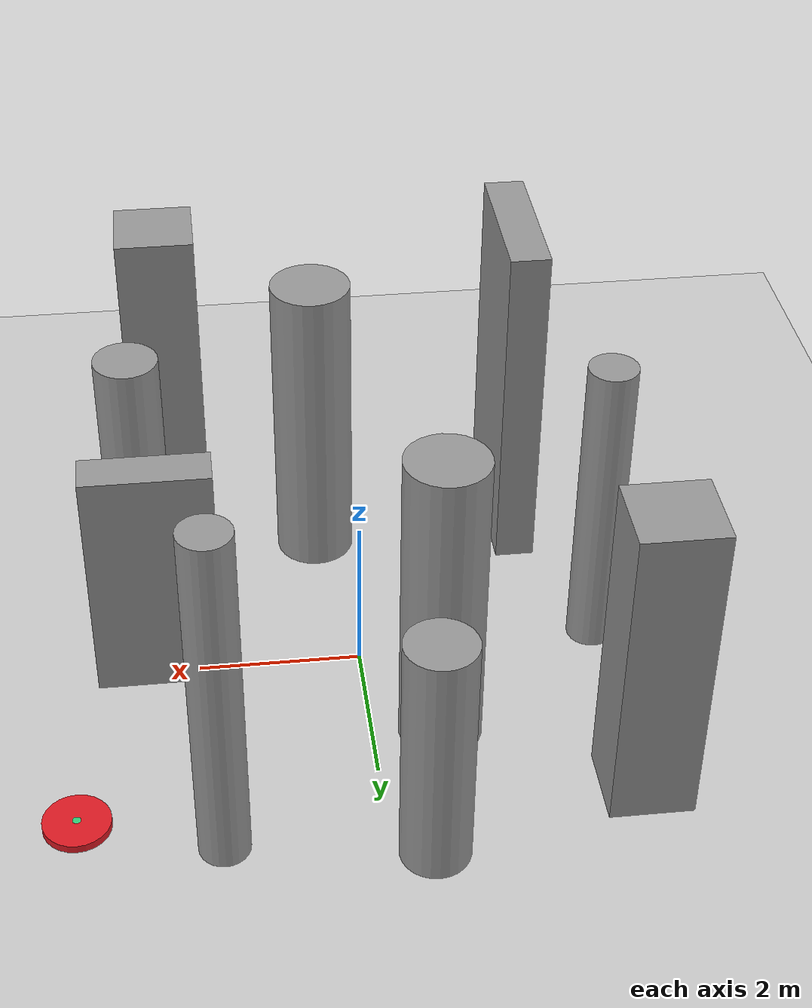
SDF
<sdf version="1.7">
 <world name="default">
  <model name="ground_plane">
   <static>1</static>
   <link name="link">
    <collision name="collision">
     <geometry><plane><normal>0 0 1</normal><size>100 100</size></plane></geometry>
     <surface><friction><ode><mu>100</mu><mu2>50</mu2></ode></friction></surface>
    </collision>
    <visual name="visual">
     <cast_shadows>0</cast_shadows>
     <geometry><plane><normal>0 0 1</normal><size>100 100</size></plane></geometry>
     <material>
      <script><uri>file://media/materials/scripts/gazebo.material</uri><name>Gazebo/Grey</name></script>
     </material>
    </visual>
   </link>
  </model>
  <model name="obstalces2">
   <link name="link_11">
    <inertial>
     <mass>1</mass>
     <inertia><ixx>166667</ixx><ixy>0</ixy><ixz>0</ixz><iyy>166667</iyy><iyz>0</iyz><izz>166667</izz></inertia>
    </inertial>
    <pose>-3.03778 2.53975 0 0 -0 0</pose>
    <visual name="visual">
     <geometry><box><size>1 1 4</size></box></geometry>
     <material>
      <lighting>1</lighting>
      <script><uri>file://media/materials/scripts/gazebo.material</uri><name>Gazebo/Grey</name></script>
      <shader type="pixel"><normal_map>__default__</normal_map></shader>
      <ambient>0.3 0.3 0.3 1</ambient>
      <diffuse>0.7 0.7 0.7 1</diffuse>
      <specular>0.01 0.01 0.01 1</specular>
      <emissive>0 0 0 1</emissive>
     </material>
    </visual>
    <collision name="collision">
     <geometry><box><size>1 1 4</size></box></geometry>
     <surface>
      <friction>
       <ode><mu>1</mu><mu2>1</mu2><fdir1>0 0 0</fdir1><slip1>0</slip1><slip2>0</slip2></ode>
       <torsional>
        <coefficient>1</coefficient>
        <patch_radius>0</patch_radius>
        <surface_radius>0</surface_radius>
        <use_patch_radius>1</use_patch_radius>
        <ode><slip>0</slip></ode>
       </torsional>
      </friction>
      <bounce><restitution_coefficient>0</restitution_coefficient><threshold>1e+06</threshold></bounce>
      <contact>
       <collide_without_contact>0</collide_without_contact>
       <collide_without_contact_bitmask>1</collide_without_contact_bitmask>
       <collide_bitmask>1</collide_bitmask>
       <ode>
        <soft_cfm>0</soft_cfm>
        <soft_erp>0.2</soft_erp>
        <kp>1e+13</kp>
        <kd>1</kd>
        <max_vel>0.01</max_vel>
        <min_depth>0</min_depth>
       </ode>
       <bullet>
        <split_impulse>1</split_impulse>
        <split_impulse_penetration_threshold>-0.01</split_impulse_penetration_threshold>
        <soft_cfm>0</soft_cfm>
        <soft_erp>0.2</soft_erp>
        <kp>1e+13</kp>
        <kd>1</kd>
       </bullet>
      </contact>
     </surface>
    </collision>
   </link>
   <link name="link_12">
    <inertial>
     <mass>1</mass>
     <inertia><ixx>145833</ixx><ixy>0</ixy><ixz>0</ixz><iyy>145833</iyy><iyz>0</iyz><izz>125</izz></inertia>
    </inertial>
    <pose>2.64639 -1.73365 0 0 -0 0</pose>
    <visual name="visual">
     <geometry><cylinder><radius>0.4</radius><length>3</length></cylinder></geometry>
     <material>
      <lighting>1</lighting>
      <script><uri>file://media/materials/scripts/gazebo.material</uri><name>Gazebo/Grey</name></script>
      <shader type="pixel"><normal_map>__default__</normal_map></shader>
      <ambient>0.3 0.3 0.3 1</ambient>
      <diffuse>0.7 0.7 0.7 1</diffuse>
      <specular>0.01 0.01 0.01 1</specular>
      <emissive>0 0 0 1</emissive>
     </material>
    </visual>
    <collision name="collision">
     <geometry><cylinder><radius>0.4</radius><length>3</length></cylinder></geometry>
     <surface>
      <friction>
       <ode><mu>1</mu><mu2>1</mu2><fdir1>0 0 0</fdir1><slip1>0</slip1><slip2>0</slip2></ode>
       <torsional>
        <coefficient>1</coefficient>
        <patch_radius>0</patch_radius>
        <surface_radius>0</surface_radius>
        <use_patch_radius>1</use_patch_radius>
        <ode><slip>0</slip></ode>
       </torsional>
      </friction>
      <bounce><restitution_coefficient>0</restitution_coefficient><threshold>1e+06</threshold></bounce>
      <contact>
       <collide_without_contact>0</collide_without_contact>
       <collide_without_contact_bitmask>1</collide_without_contact_bitmask>
       <collide_bitmask>1</collide_bitmask>
       <ode>
        <soft_cfm>0</soft_cfm>
        <soft_erp>0.2</soft_erp>
        <kp>1e+13</kp>
        <kd>1</kd>
        <max_vel>0.01</max_vel>
        <min_depth>0</min_depth>
       </ode>
       <bullet>
        <split_impulse>1</split_impulse>
        <split_impulse_penetration_threshold>-0.01</split_impulse_penetration_threshold>
        <soft_cfm>0</soft_cfm>
        <soft_erp>0.2</soft_erp>
        <kp>1e+13</kp>
        <kd>1</kd>
       </bullet>
      </contact>
     </surface>
    </collision>
   </link>
   <link name="link_14">
    <inertial>
     <mass>1</mass>
     <inertia><ixx>145833</ixx><ixy>0</ixy><ixz>0</ixz><iyy>145833</iyy><iyz>0</iyz><izz>125</izz></inertia>
    </inertial>
    <pose>0.344724 -2.40039 0 0 -0 0</pose>
    <visual name="visual">
     <geometry><cylinder><radius>0.5</radius><length>4</length></cylinder></geometry>
     <material>
      <lighting>1</lighting>
      <script><uri>file://media/materials/scripts/gazebo.material</uri><name>Gazebo/Grey</name></script>
      <shader type="pixel"><normal_map>__default__</normal_map></shader>
      <ambient>0.3 0.3 0.3 1</ambient>
      <diffuse>0.7 0.7 0.7 1</diffuse>
      <specular>0.01 0.01 0.01 1</specular>
      <emissive>0 0 0 1</emissive>
     </material>
    </visual>
    <collision name="collision">
     <geometry><cylinder><radius>0.5</radius><length>4</length></cylinder></geometry>
     <surface>
      <friction>
       <ode><mu>1</mu><mu2>1</mu2><fdir1>0 0 0</fdir1><slip1>0</slip1><slip2>0</slip2></ode>
       <torsional>
        <coefficient>1</coefficient>
        <patch_radius>0</patch_radius>
        <surface_radius>0</surface_radius>
        <use_patch_radius>1</use_patch_radius>
        <ode><slip>0</slip></ode>
       </torsional>
      </friction>
      <bounce><restitution_coefficient>0</restitution_coefficient><threshold>1e+06</threshold></bounce>
      <contact>
       <collide_without_contact>0</collide_without_contact>
       <collide_without_contact_bitmask>1</collide_without_contact_bitmask>
       <collide_bitmask>1</collide_bitmask>
       <ode>
        <soft_cfm>0</soft_cfm>
        <soft_erp>0.2</soft_erp>
        <kp>1e+13</kp>
        <kd>1</kd>
        <max_vel>0.01</max_vel>
        <min_depth>0</min_depth>
       </ode>
       <bullet>
        <split_impulse>1</split_impulse>
        <split_impulse_penetration_threshold>-0.01</split_impulse_penetration_threshold>
        <soft_cfm>0</soft_cfm>
        <soft_erp>0.2</soft_erp>
        <kp>1e+13</kp>
        <kd>1</kd>
       </bullet>
      </contact>
     </surface>
    </collision>
   </link>
   <link name="link_16">
    <inertial>
     <mass>1</mass>
     <inertia><ixx>145833</ixx><ixy>0</ixy><ixz>0</ixz><iyy>145833</iyy><iyz>0</iyz><izz>125</izz></inertia>
    </inertial>
    <pose>-0.815528 1.39211 0 0 -0 0</pose>
    <visual name="visual">
     <geometry><cylinder><radius>0.5</radius><length>4</length></cylinder></geometry>
     <material>
      <lighting>1</lighting>
      <script><uri>file://media/materials/scripts/gazebo.material</uri><name>Gazebo/Grey</name></script>
      <shader type="pixel"><normal_map>__default__</normal_map></shader>
      <ambient>0.3 0.3 0.3 1</ambient>
      <diffuse>0.7 0.7 0.7 1</diffuse>
      <specular>0.01 0.01 0.01 1</specular>
      <emissive>0 0 0 1</emissive>
     </material>
    </visual>
    <collision name="collision">
     <geometry><cylinder><radius>0.5</radius><length>4</length></cylinder></geometry>
     <surface>
      <friction>
       <ode><mu>1</mu><mu2>1</mu2><fdir1>0 0 0</fdir1><slip1>0</slip1><slip2>0</slip2></ode>
       <torsional>
        <coefficient>1</coefficient>
        <patch_radius>0</patch_radius>
        <surface_radius>0</surface_radius>
        <use_patch_radius>1</use_patch_radius>
        <ode><slip>0</slip></ode>
       </torsional>
      </friction>
      <bounce><restitution_coefficient>0</restitution_coefficient><threshold>1e+06</threshold></bounce>
      <contact>
       <collide_without_contact>0</collide_without_contact>
       <collide_without_contact_bitmask>1</collide_without_contact_bitmask>
       <collide_bitmask>1</collide_bitmask>
       <ode>
        <soft_cfm>0</soft_cfm>
        <soft_erp>0.2</soft_erp>
        <kp>1e+13</kp>
        <kd>1</kd>
        <max_vel>0.01</max_vel>
        <min_depth>0</min_depth>
       </ode>
       <bullet>
        <split_impulse>1</split_impulse>
        <split_impulse_penetration_threshold>-0.01</split_impulse_penetration_threshold>
        <soft_cfm>0</soft_cfm>
        <soft_erp>0.2</soft_erp>
        <kp>1e+13</kp>
        <kd>1</kd>
       </bullet>
      </contact>
     </surface>
    </collision>
   </link>
   <link name="link_17">
    <inertial>
     <mass>1</mass>
     <inertia><ixx>145833</ixx><ixy>0</ixy><ixz>0</ixz><iyy>145833</iyy><iyz>0</iyz><izz>125</izz></inertia>
    </inertial>
    <pose>-0.417772 3.76581 0 0 -0 0</pose>
    <visual name="visual">
     <geometry><cylinder><radius>0.4</radius><length>3</length></cylinder></geometry>
     <material>
      <lighting>1</lighting>
      <script><uri>file://media/materials/scripts/gazebo.material</uri><name>Gazebo/Grey</name></script>
      <shader type="pixel"><normal_map>__default__</normal_map></shader>
      <ambient>0.3 0.3 0.3 1</ambient>
      <diffuse>0.7 0.7 0.7 1</diffuse>
      <specular>0.01 0.01 0.01 1</specular>
      <emissive>0 0 0 1</emissive>
     </material>
    </visual>
    <collision name="collision">
     <geometry><cylinder><radius>0.4</radius><length>3</length></cylinder></geometry>
     <surface>
      <friction>
       <ode><mu>1</mu><mu2>1</mu2><fdir1>0 0 0</fdir1><slip1>0</slip1><slip2>0</slip2></ode>
       <torsional>
        <coefficient>1</coefficient>
        <patch_radius>0</patch_radius>
        <surface_radius>0</surface_radius>
        <use_patch_radius>1</use_patch_radius>
        <ode><slip>0</slip></ode>
       </torsional>
      </friction>
      <bounce><restitution_coefficient>0</restitution_coefficient><threshold>1e+06</threshold></bounce>
      <contact>
       <collide_without_contact>0</collide_without_contact>
       <collide_without_contact_bitmask>1</collide_without_contact_bitmask>
       <collide_bitmask>1</collide_bitmask>
       <ode>
        <soft_cfm>0</soft_cfm>
        <soft_erp>0.2</soft_erp>
        <kp>1e+13</kp>
        <kd>1</kd>
        <max_vel>0.01</max_vel>
        <min_depth>0</min_depth>
       </ode>
       <bullet>
        <split_impulse>1</split_impulse>
        <split_impulse_penetration_threshold>-0.01</split_impulse_penetration_threshold>
        <soft_cfm>0</soft_cfm>
        <soft_erp>0.2</soft_erp>
        <kp>1e+13</kp>
        <kd>1</kd>
       </bullet>
      </contact>
     </surface>
    </collision>
   </link>
   <link name="link_18">
    <inertial>
     <mass>1</mass>
     <inertia><ixx>166667</ixx><ixy>0</ixy><ixz>0</ixz><iyy>166667</iyy><iyz>0</iyz><izz>166667</izz></inertia>
    </inertial>
    <pose>2.22537 -4.04815 0 0 -0 0</pose>
    <visual name="visual">
     <geometry><box><size>1 1 4</size></box></geometry>
     <material>
      <lighting>1</lighting>
      <script><uri>file://media/materials/scripts/gazebo.material</uri><name>Gazebo/Grey</name></script>
      <shader type="pixel"><normal_map>__default__</normal_map></shader>
      <ambient>0.3 0.3 0.3 1</ambient>
      <diffuse>0.7 0.7 0.7 1</diffuse>
      <specular>0.01 0.01 0.01 1</specular>
      <emissive>0 0 0 1</emissive>
     </material>
    </visual>
    <collision name="collision">
     <geometry><box><size>1 1 4</size></box></geometry>
     <surface>
      <friction>
       <ode><mu>1</mu><mu2>1</mu2><fdir1>0 0 0</fdir1><slip1>0</slip1><slip2>0</slip2></ode>
       <torsional>
        <coefficient>1</coefficient>
        <patch_radius>0</patch_radius>
        <surface_radius>0</surface_radius>
        <use_patch_radius>1</use_patch_radius>
        <ode><slip>0</slip></ode>
       </torsional>
      </friction>
      <bounce><restitution_coefficient>0</restitution_coefficient><threshold>1e+06</threshold></bounce>
      <contact>
       <collide_without_contact>0</collide_without_contact>
       <collide_without_contact_bitmask>1</collide_without_contact_bitmask>
       <collide_bitmask>1</collide_bitmask>
       <ode>
        <soft_cfm>0</soft_cfm>
        <soft_erp>0.2</soft_erp>
        <kp>1e+13</kp>
        <kd>1</kd>
        <max_vel>0.01</max_vel>
        <min_depth>0</min_depth>
       </ode>
       <bullet>
        <split_impulse>1</split_impulse>
        <split_impulse_penetration_threshold>-0.01</split_impulse_penetration_threshold>
        <soft_cfm>0</soft_cfm>
        <soft_erp>0.2</soft_erp>
        <kp>1e+13</kp>
        <kd>1</kd>
       </bullet>
      </contact>
     </surface>
    </collision>
   </link>
   <link name="link_3">
    <inertial>
     <mass>1</mass>
     <inertia><ixx>145833</ixx><ixy>0</ixy><ixz>0</ixz><iyy>145833</iyy><iyz>0</iyz><izz>125</izz></inertia>
    </inertial>
    <pose>-2.97254 -0.183383 0 0 -0 0</pose>
    <visual name="visual">
     <geometry><cylinder><radius>0.3</radius><length>4</length></cylinder></geometry>
     <material>
      <lighting>1</lighting>
      <script><uri>file://media/materials/scripts/gazebo.material</uri><name>Gazebo/Grey</name></script>
      <shader type="pixel"><normal_map>__default__</normal_map></shader>
      <ambient>0.3 0.3 0.3 1</ambient>
      <diffuse>0.7 0.7 0.7 1</diffuse>
      <specular>0.01 0.01 0.01 1</specular>
      <emissive>0 0 0 1</emissive>
     </material>
    </visual>
    <collision name="collision">
     <geometry><cylinder><radius>0.3</radius><length>4</length></cylinder></geometry>
     <surface>
      <friction>
       <ode><mu>1</mu><mu2>1</mu2><fdir1>0 0 0</fdir1><slip1>0</slip1><slip2>0</slip2></ode>
       <torsional>
        <coefficient>1</coefficient>
        <patch_radius>0</patch_radius>
        <surface_radius>0</surface_radius>
        <use_patch_radius>1</use_patch_radius>
        <ode><slip>0</slip></ode>
       </torsional>
      </friction>
      <bounce><restitution_coefficient>0</restitution_coefficient><threshold>1e+06</threshold></bounce>
      <contact>
       <collide_without_contact>0</collide_without_contact>
       <collide_without_contact_bitmask>1</collide_without_contact_bitmask>
       <collide_bitmask>1</collide_bitmask>
       <ode>
        <soft_cfm>0</soft_cfm>
        <soft_erp>0.2</soft_erp>
        <kp>1e+13</kp>
        <kd>1</kd>
        <max_vel>0.01</max_vel>
        <min_depth>0</min_depth>
       </ode>
       <bullet>
        <split_impulse>1</split_impulse>
        <split_impulse_penetration_threshold>-0.01</split_impulse_penetration_threshold>
        <soft_cfm>0</soft_cfm>
        <soft_erp>0.2</soft_erp>
        <kp>1e+13</kp>
        <kd>1</kd>
       </bullet>
      </contact>
     </surface>
    </collision>
   </link>
   <link name="link_4">
    <inertial>
     <mass>1</mass>
     <inertia><ixx>166667</ixx><ixy>0</ixy><ixz>0</ixz><iyy>166667</iyy><iyz>0</iyz><izz>166667</izz></inertia>
    </inertial>
    <pose>2.46004 0.510193 0 0 -0 0</pose>
    <visual name="visual">
     <geometry><box><size>1.5 0.5 3</size></box></geometry>
     <material>
      <lighting>1</lighting>
      <script><uri>file://media/materials/scripts/gazebo.material</uri><name>Gazebo/Grey</name></script>
      <shader type="pixel"><normal_map>__default__</normal_map></shader>
      <ambient>0.3 0.3 0.3 1</ambient>
      <diffuse>0.7 0.7 0.7 1</diffuse>
      <specular>0.01 0.01 0.01 1</specular>
      <emissive>0 0 0 1</emissive>
     </material>
    </visual>
    <collision name="collision">
     <geometry><box><size>1.5 0.5 3</size></box></geometry>
     <surface>
      <friction>
       <ode><mu>1</mu><mu2>1</mu2><fdir1>0 0 0</fdir1><slip1>0</slip1><slip2>0</slip2></ode>
       <torsional>
        <coefficient>1</coefficient>
        <patch_radius>0</patch_radius>
        <surface_radius>0</surface_radius>
        <use_patch_radius>1</use_patch_radius>
        <ode><slip>0</slip></ode>
       </torsional>
      </friction>
      <bounce><restitution_coefficient>0</restitution_coefficient><threshold>1e+06</threshold></bounce>
      <contact>
       <collide_without_contact>0</collide_without_contact>
       <collide_without_contact_bitmask>1</collide_without_contact_bitmask>
       <collide_bitmask>1</collide_bitmask>
       <ode>
        <soft_cfm>0</soft_cfm>
        <soft_erp>0.2</soft_erp>
        <kp>1e+13</kp>
        <kd>1</kd>
        <max_vel>0.01</max_vel>
        <min_depth>0</min_depth>
       </ode>
       <bullet>
        <split_impulse>1</split_impulse>
        <split_impulse_penetration_threshold>-0.01</split_impulse_penetration_threshold>
        <soft_cfm>0</soft_cfm>
        <soft_erp>0.2</soft_erp>
        <kp>1e+13</kp>
        <kd>1</kd>
       </bullet>
      </contact>
     </surface>
    </collision>
   </link>
   <link name="link_5">
    <inertial>
     <mass>1</mass>
     <inertia><ixx>166667</ixx><ixy>0</ixy><ixz>0</ixz><iyy>166667</iyy><iyz>0</iyz><izz>166667</izz></inertia>
    </inertial>
    <pose>-2.2822 -2.82561 0 0 -0 0</pose>
    <visual name="visual">
     <geometry><box><size>0.5 2 5</size></box></geometry>
     <material>
      <lighting>1</lighting>
      <script><uri>file://media/materials/scripts/gazebo.material</uri><name>Gazebo/Grey</name></script>
      <shader type="pixel"><normal_map>__default__</normal_map></shader>
      <ambient>0.3 0.3 0.3 1</ambient>
      <diffuse>0.7 0.7 0.7 1</diffuse>
      <specular>0.01 0.01 0.01 1</specular>
      <emissive>0 0 0 1</emissive>
     </material>
    </visual>
    <collision name="collision">
     <geometry><box><size>0.5 2 5</size></box></geometry>
     <surface>
      <friction>
       <ode><mu>1</mu><mu2>1</mu2><fdir1>0 0 0</fdir1><slip1>0</slip1><slip2>0</slip2></ode>
       <torsional>
        <coefficient>1</coefficient>
        <patch_radius>0</patch_radius>
        <surface_radius>0</surface_radius>
        <use_patch_radius>1</use_patch_radius>
        <ode><slip>0</slip></ode>
       </torsional>
      </friction>
      <bounce><restitution_coefficient>0</restitution_coefficient><threshold>1e+06</threshold></bounce>
      <contact>
       <collide_without_contact>0</collide_without_contact>
       <collide_without_contact_bitmask>1</collide_without_contact_bitmask>
       <collide_bitmask>1</collide_bitmask>
       <ode>
        <soft_cfm>0</soft_cfm>
        <soft_erp>0.2</soft_erp>
        <kp>1e+13</kp>
        <kd>1</kd>
        <max_vel>0.01</max_vel>
        <min_depth>0</min_depth>
       </ode>
       <bullet>
        <split_impulse>1</split_impulse>
        <split_impulse_penetration_threshold>-0.01</split_impulse_penetration_threshold>
        <soft_cfm>0</soft_cfm>
        <soft_erp>0.2</soft_erp>
        <kp>1e+13</kp>
        <kd>1</kd>
       </bullet>
      </contact>
     </surface>
    </collision>
   </link>
   <link name="link_6">
    <inertial>
     <mass>1</mass>
     <inertia><ixx>145833</ixx><ixy>0</ixy><ixz>0</ixz><iyy>145833</iyy><iyz>0</iyz><izz>125</izz></inertia>
    </inertial>
    <pose>1.8493 2.9833 0 0 -0 0</pose>
    <visual name="visual">
     <geometry><cylinder><radius>0.3</radius><length>5</length></cylinder></geometry>
     <material>
      <lighting>1</lighting>
      <script><uri>file://media/materials/scripts/gazebo.material</uri><name>Gazebo/Grey</name></script>
      <shader type="pixel"><normal_map>__default__</normal_map></shader>
      <ambient>0.3 0.3 0.3 1</ambient>
      <diffuse>0.7 0.7 0.7 1</diffuse>
      <specular>0.01 0.01 0.01 1</specular>
      <emissive>0 0 0 1</emissive>
     </material>
    </visual>
    <collision name="collision">
     <geometry><cylinder><radius>0.3</radius><length>5</length></cylinder></geometry>
     <surface>
      <friction>
       <ode><mu>1</mu><mu2>1</mu2><fdir1>0 0 0</fdir1><slip1>0</slip1><slip2>0</slip2></ode>
       <torsional>
        <coefficient>1</coefficient>
        <patch_radius>0</patch_radius>
        <surface_radius>0</surface_radius>
        <use_patch_radius>1</use_patch_radius>
        <ode><slip>0</slip></ode>
       </torsional>
      </friction>
      <bounce><restitution_coefficient>0</restitution_coefficient><threshold>1e+06</threshold></bounce>
      <contact>
       <collide_without_contact>0</collide_without_contact>
       <collide_without_contact_bitmask>1</collide_without_contact_bitmask>
       <collide_bitmask>1</collide_bitmask>
       <ode>
        <soft_cfm>0</soft_cfm>
        <soft_erp>0.2</soft_erp>
        <kp>1e+13</kp>
        <kd>1</kd>
        <max_vel>0.01</max_vel>
        <min_depth>0</min_depth>
       </ode>
       <bullet>
        <split_impulse>1</split_impulse>
        <split_impulse_penetration_threshold>-0.01</split_impulse_penetration_threshold>
        <soft_cfm>0</soft_cfm>
        <soft_erp>0.2</soft_erp>
        <kp>1e+13</kp>
        <kd>1</kd>
       </bullet>
      </contact>
     </surface>
    </collision>
   </link>
   <static>0</static>
   <pose>8e-06 0 1.99999 1e-06 4e-06 0</pose>
  </model>
  <model name="conc">
   <link name="link_0">
    <inertial>
     <mass>1</mass>
     <inertia><ixx>0.145833</ixx><ixy>0</ixy><ixz>0</ixz><iyy>0.145833</iyy><iyz>0</iyz><izz>0.125</izz></inertia>
    </inertial>
    <visual name="visual">
     <geometry><cylinder><radius>0.4</radius><length>0.1</length></cylinder></geometry>
     <material>
      <lighting>1</lighting>
      <script><uri>file://media/materials/scripts/gazebo.material</uri><name>Gazebo/Grey</name></script>
      <shader type="pixel"><normal_map>__default__</normal_map></shader>
      <ambient>0.753 0.11 0.157 1</ambient>
      <diffuse>0.878 0.106 0.141 1</diffuse>
      <specular>0.01 0.01 0.01 1</specular>
      <emissive>0 0 0 1</emissive>
     </material>
    </visual>
    <collision name="collision">
     <geometry><cylinder><radius>0.4</radius><length>0.1</length></cylinder></geometry>
     <surface>
      <friction>
       <ode><mu>1</mu><mu2>1</mu2><fdir1>0 0 0</fdir1><slip1>0</slip1><slip2>0</slip2></ode>
       <torsional>
        <coefficient>1</coefficient>
        <patch_radius>0</patch_radius>
        <surface_radius>0</surface_radius>
        <use_patch_radius>1</use_patch_radius>
        <ode><slip>0</slip></ode>
       </torsional>
      </friction>
      <bounce><restitution_coefficient>0</restitution_coefficient><threshold>1e+06</threshold></bounce>
      <contact>
       <collide_without_contact>0</collide_without_contact>
       <collide_without_contact_bitmask>1</collide_without_contact_bitmask>
       <collide_bitmask>1</collide_bitmask>
       <ode>
        <soft_cfm>0</soft_cfm>
        <soft_erp>0.2</soft_erp>
        <kp>1e+13</kp>
        <kd>1</kd>
        <max_vel>0.01</max_vel>
        <min_depth>0</min_depth>
       </ode>
       <bullet>
        <split_impulse>1</split_impulse>
        <split_impulse_penetration_threshold>-0.01</split_impulse_penetration_threshold>
        <soft_cfm>0</soft_cfm>
        <soft_erp>0.2</soft_erp>
        <kp>1e+13</kp>
        <kd>1</kd>
       </bullet>
      </contact>
     </surface>
    </collision>
   </link>
   <link name="link_1">
    <inertial>
     <mass>1</mass>
     <inertia><ixx>0.145833</ixx><ixy>0</ixy><ixz>0</ixz><iyy>0.145833</iyy><iyz>0</iyz><izz>0.125</izz></inertia>
    </inertial>
    <pose>-0 0 0.05 0 -0 0</pose>
    <visual name="visual">
     <geometry><cylinder><radius>0.05</radius><length>0.001</length></cylinder></geometry>
     <material>
      <lighting>1</lighting>
      <script><uri>file://media/materials/scripts/gazebo.material</uri><name>Gazebo/Grey</name></script>
      <shader type="pixel"><normal_map>__default__</normal_map></shader>
      <ambient>0.149 0.635 0.412 1</ambient>
      <diffuse>0.2 0.82 0.478 1</diffuse>
      <specular>0.01 0.01 0.01 1</specular>
      <emissive>0 0 0 1</emissive>
     </material>
    </visual>
    <collision name="collision">
     <geometry><cylinder><radius>0.05</radius><length>0.001</length></cylinder></geometry>
     <surface>
      <friction>
       <ode><mu>1</mu><mu2>1</mu2><fdir1>0 0 0</fdir1><slip1>0</slip1><slip2>0</slip2></ode>
       <torsional>
        <coefficient>1</coefficient>
        <patch_radius>0</patch_radius>
        <surface_radius>0</surface_radius>
        <use_patch_radius>1</use_patch_radius>
        <ode><slip>0</slip></ode>
       </torsional>
      </friction>
      <bounce><restitution_coefficient>0</restitution_coefficient><threshold>1e+06</threshold></bounce>
      <contact>
       <collide_without_contact>0</collide_without_contact>
       <collide_without_contact_bitmask>1</collide_without_contact_bitmask>
       <collide_bitmask>1</collide_bitmask>
       <ode>
        <soft_cfm>0</soft_cfm>
        <soft_erp>0.2</soft_erp>
        <kp>1e+13</kp>
        <kd>1</kd>
        <max_vel>0.01</max_vel>
        <min_depth>0</min_depth>
       </ode>
       <bullet>
        <split_impulse>1</split_impulse>
        <split_impulse_penetration_threshold>-0.01</split_impulse_penetration_threshold>
        <soft_cfm>0</soft_cfm>
        <soft_erp>0.2</soft_erp>
        <kp>1e+13</kp>
        <kd>1</kd>
       </bullet>
      </contact>
     </surface>
    </collision>
   </link>
   <static>0</static>
   <joint name="joint" type="fixed">
    <parent>link_0</parent>
    <child>conc::link_1</child>
    <pose>0 0 0.1 0 -0 0</pose>
    <axis><xyz>0 0 1</xyz><limit><lower>-1e+16</lower><upper>1e+16</upper></limit></axis>
   </joint>
   <pose>3.5 2.5 0.04999 0 -0 0</pose>
  </model>
 </world>
</sdf>
